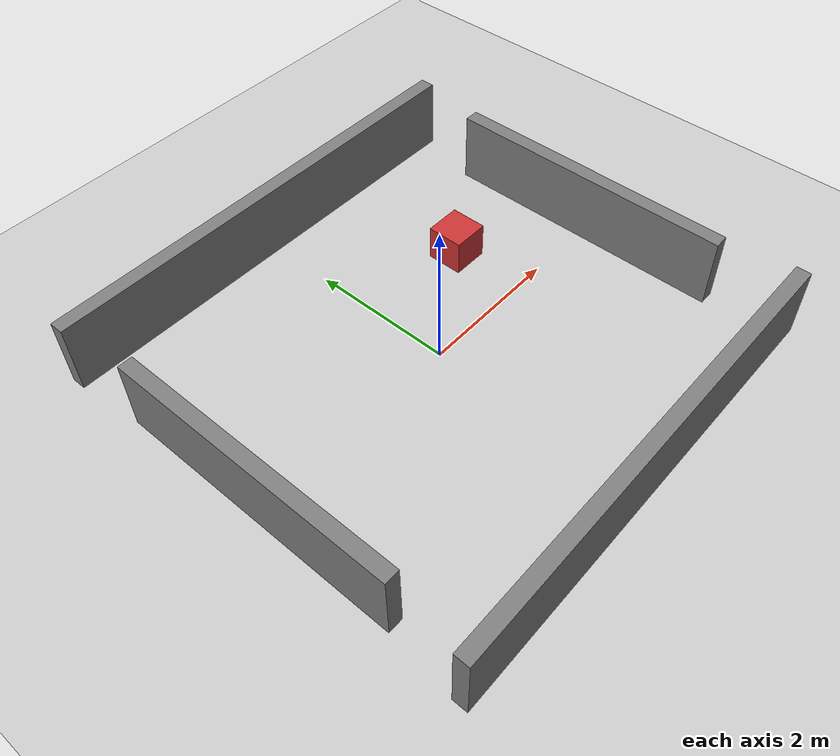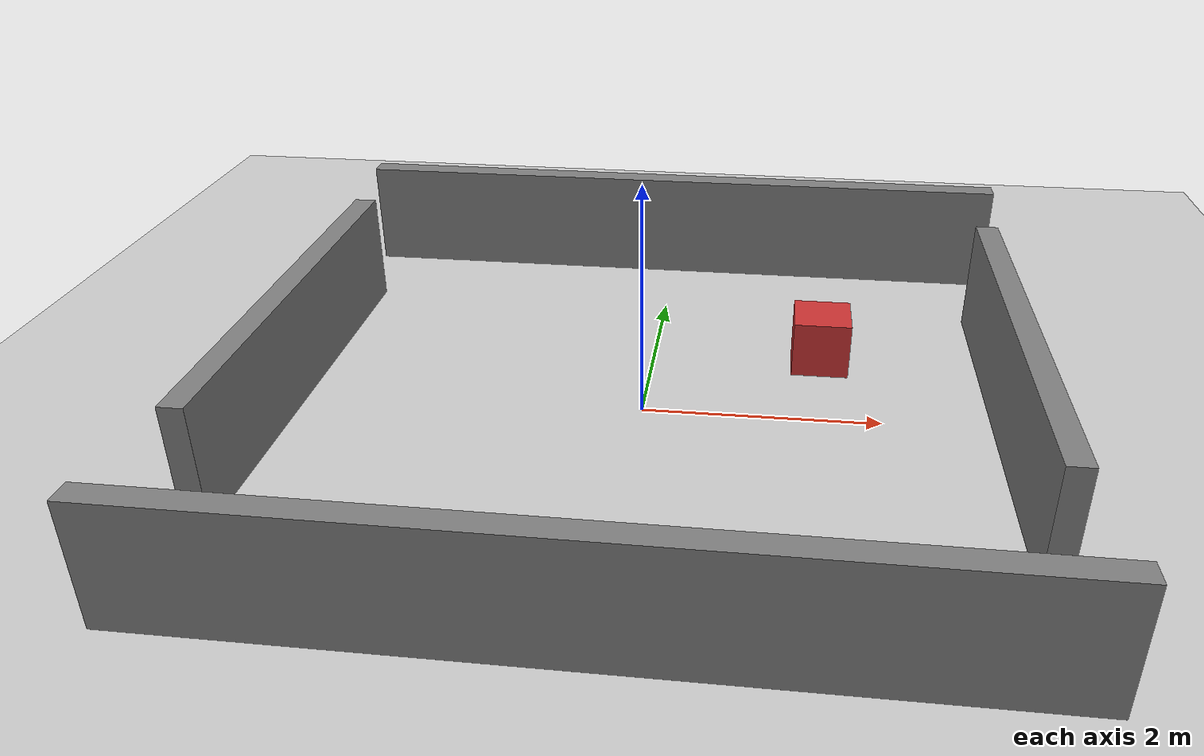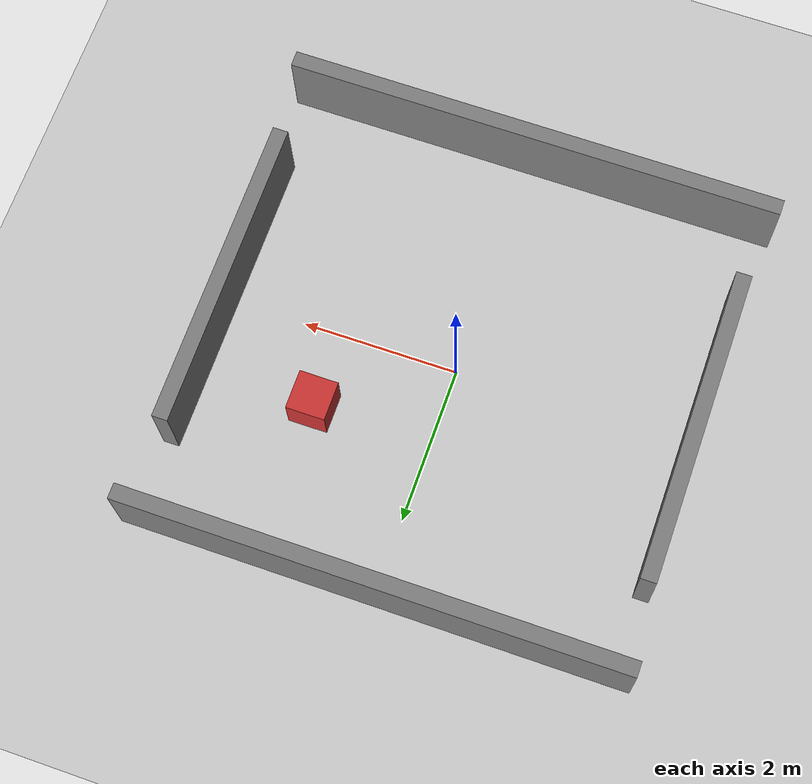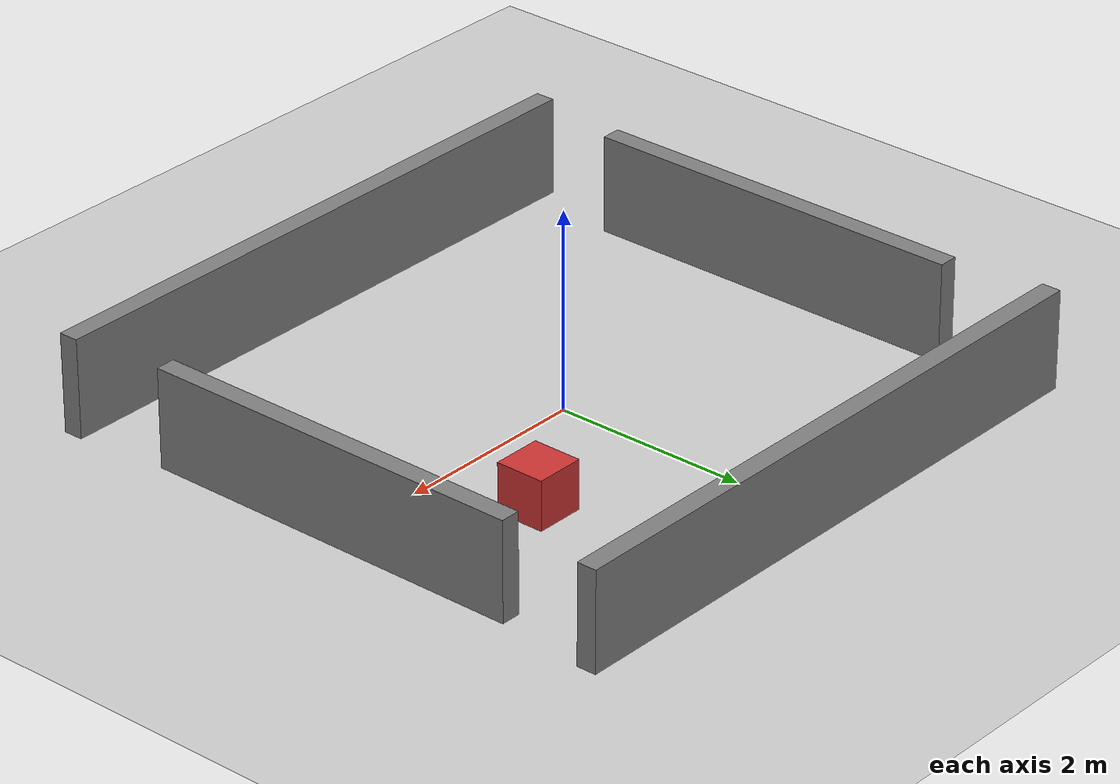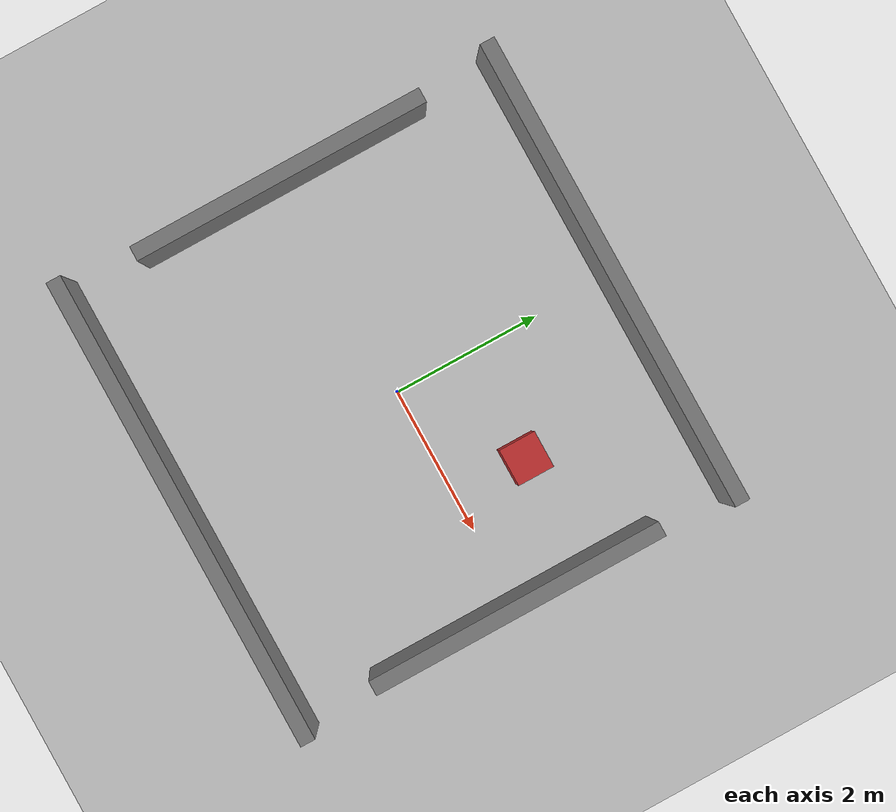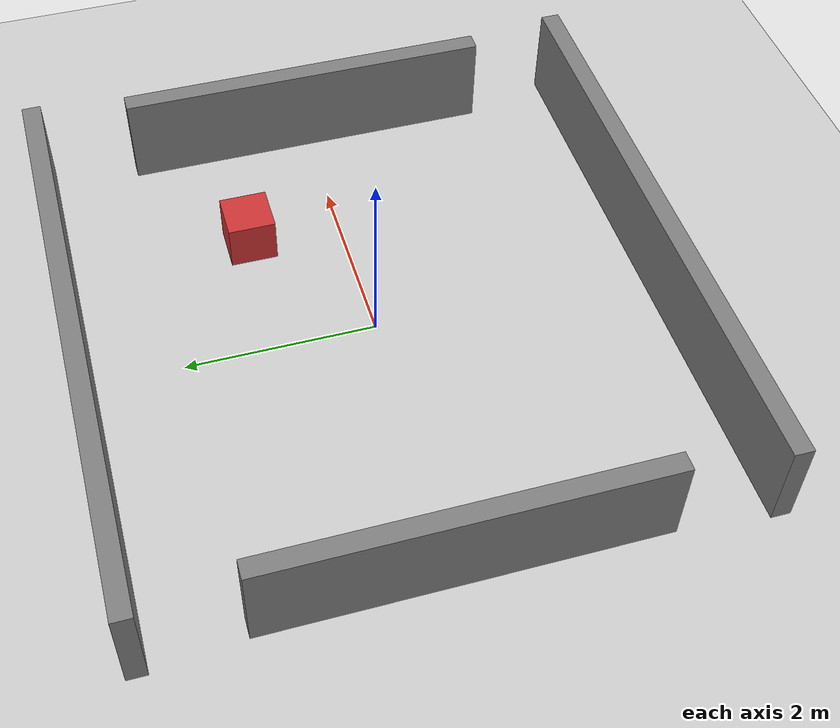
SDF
<?xml version="1.0"?>
<sdf version="1.8">
  <world name="default">

    <!-- Physics -->
    <physics type="ode">
      <real_time_update_rate>1000.0</real_time_update_rate>
      <max_step_size>0.001</max_step_size>
      <real_time_factor>1</real_time_factor>
    </physics>

    <!-- Plugins for Gazebo Sim (NO Sensors plugin for headless) -->
    <plugin filename="gz-sim-physics-system" name="gz::sim::systems::Physics"/>
    <plugin filename="gz-sim-user-commands-system" name="gz::sim::systems::UserCommands"/>
    <plugin filename="gz-sim-scene-broadcaster-system" name="gz::sim::systems::SceneBroadcaster"/>
    <plugin filename="gz-sim-contact-system" name="gz::sim::systems::Contact"/>

    <!-- Light -->
    <light type="directional" name="sun">
      <cast_shadows>true</cast_shadows>
      <pose>0 0 10 0 0 0</pose>
      <diffuse>0.8 0.8 0.8 1</diffuse>
      <specular>0.2 0.2 0.2 1</specular>
      <attenuation>
        <range>1000</range>
        <constant>0.9</constant>
        <linear>0.01</linear>
        <quadratic>0.001</quadratic>
      </attenuation>
      <direction>-0.5 0.1 -0.9</direction>
    </light>

    <!-- Ground Plane -->
    <model name="ground_plane">
      <static>true</static>
      <link name="link">
        <collision name="collision">
          <geometry>
            <plane>
              <normal>0 0 1</normal>
              <size>100 100</size>
            </plane>
          </geometry>
        </collision>
        <visual name="visual">
          <geometry>
            <plane>
              <normal>0 0 1</normal>
              <size>100 100</size>
            </plane>
          </geometry>
          <material>
            <ambient>0.8 0.8 0.8 1</ambient>
            <diffuse>0.8 0.8 0.8 1</diffuse>
          </material>
        </visual>
      </link>
    </model>

    <!-- Walls -->
    <model name="wall_1">
      <static>true</static>
      <pose>3 0 0.5 0 0 0</pose>
      <link name="link">
        <collision name="collision">
          <geometry><box><size>0.2 4 1</size></box></geometry>
        </collision>
        <visual name="visual">
          <geometry><box><size>0.2 4 1</size></box></geometry>
          <material><ambient>0.5 0.5 0.5 1</ambient></material>
        </visual>
      </link>
    </model>

    <model name="wall_2">
      <static>true</static>
      <pose>-3 0 0.5 0 0 0</pose>
      <link name="link">
        <collision name="collision">
          <geometry><box><size>0.2 4 1</size></box></geometry>
        </collision>
        <visual name="visual">
          <geometry><box><size>0.2 4 1</size></box></geometry>
          <material><ambient>0.5 0.5 0.5 1</ambient></material>
        </visual>
      </link>
    </model>

    <model name="wall_3">
      <static>true</static>
      <pose>0 3 0.5 0 0 1.5708</pose>
      <link name="link">
        <collision name="collision">
          <geometry><box><size>0.2 6.4 1</size></box></geometry>
        </collision>
        <visual name="visual">
          <geometry><box><size>0.2 6.4 1</size></box></geometry>
          <material><ambient>0.5 0.5 0.5 1</ambient></material>
        </visual>
      </link>
    </model>

    <model name="wall_4">
      <static>true</static>
      <pose>0 -3 0.5 0 0 1.5708</pose>
      <link name="link">
        <collision name="collision">
          <geometry><box><size>0.2 6.4 1</size></box></geometry>
        </collision>
        <visual name="visual">
          <geometry><box><size>0.2 6.4 1</size></box></geometry>
          <material><ambient>0.5 0.5 0.5 1</ambient></material>
        </visual>
      </link>
    </model>

    <!-- Obstacle -->
    <model name="obstacle_1">
      <static>true</static>
      <pose>1.5 1 0.25 0 0 0</pose>
      <link name="link">
        <collision name="collision">
          <geometry><box><size>0.5 0.5 0.5</size></box></geometry>
        </collision>
        <visual name="visual">
          <geometry><box><size>0.5 0.5 0.5</size></box></geometry>
          <material><ambient>0.8 0.2 0.2 1</ambient></material>
        </visual>
      </link>
    </model>

  </world>
</sdf>
